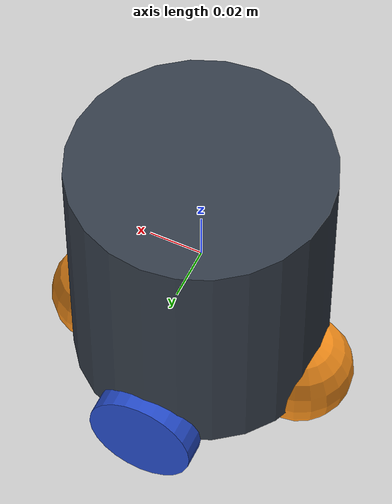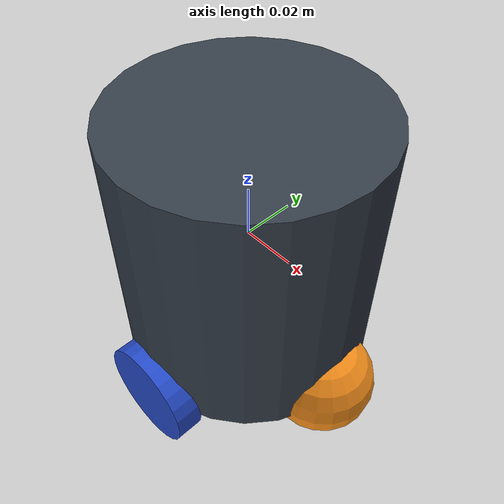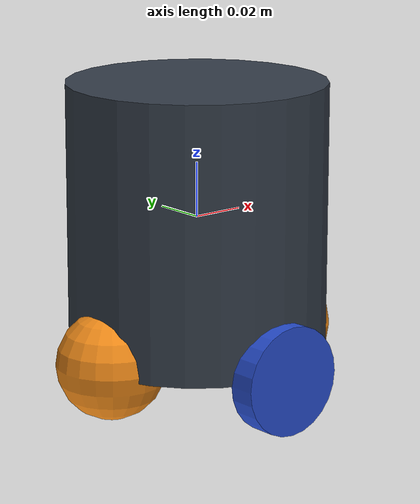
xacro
<?xml version="1.0" ?>

<robot name="m2wr" xmlns:xacro="https://www.ros.org/wiki/xacro" >

  <material name="black">
    <color rgba="0.0 0.0 0.0 1.0"/>
  </material>
  <material name="blue">
    <color rgba="0.203125 0.23828125 0.28515625 1.0"/>
  </material>
  <material name="green">
    <color rgba="0.0 0.8 0.0 1.0"/>
  </material>
  <material name="grey">
    <color rgba="0.2 0.2 0.2 1.0"/>
  </material>
  <material name="orange">
    <color rgba="1.0 0.423529411765 0.0392156862745 1.0"/>
  </material>
  <material name="brown">
    <color rgba="0.870588235294 0.811764705882 0.764705882353 1.0"/>
  </material>
  <material name="red">
    <color rgba="0.80078125 0.12890625 0.1328125 1.0"/>
  </material>
  <material name="white">
    <color rgba="1.0 1.0 1.0 1.0"/>
  </material>

  <gazebo reference="link_chassis">
    <material>Gazebo/Orange</material>
  </gazebo>
  <gazebo reference="link_left_wheel">
    <material>Gazebo/Blue</material>
  </gazebo>
  <gazebo reference="link_right_wheel">
    <material>Gazebo/Blue</material>
  </gazebo>

  <link name="link_chassis">
    <!-- pose and inertial -->
    <pose>0 0 0.01 0 0 0</pose>

    <inertial>
      <mass value="5"/>
      <origin rpy="0 0 0" xyz="0 0 0.1"/>
      <inertia ixx="0.0395416666667" ixy="0" ixz="0" iyy="0.106208333333" iyz="0" izz="0.106208333333"/>
    </inertial>

    <collision name="collision_chassis">
      <geometry>
	<cylinder length="0.1" radius="0.0475"/>
      </geometry>
    </collision>

    <visual>
      <origin rpy="0 0 0" xyz="0 0 0"/>
      <geometry>
	<cylinder length="0.1" radius="0.0475"/>
      </geometry>
      <material name="blue"/>
    </visual>

    <!-- caster front -->
    <collision name="caster_front_collision">
      <origin rpy=" 0 0 0" xyz="0.04 0 -0.048"/>
      <geometry>
        <sphere radius="0.02"/>
      </geometry>
      <surface>
        <friction>
          <ode>
            <mu>0</mu>
            <mu2>0</mu2>
            <slip1>1.0</slip1>
            <slip2>1.0</slip2>
          </ode>
        </friction>
      </surface>
    </collision>
    <visual name="caster_front_visual">
      <origin rpy=" 0 0 0" xyz="0.04 0 -0.048"/>
      <geometry>
        <sphere radius="0.02"/>
      </geometry>
    </visual>

	<!-- caster back -->
    <collision name="caster_back_collision">
      <origin rpy=" 0 0 0" xyz="-0.04 0 -0.048"/>
      <geometry>
        <sphere radius="0.02"/>
      </geometry>
      <surface>
        <friction>
          <ode>
            <mu>0</mu>
            <mu2>0</mu2>
            <slip1>1.0</slip1>
            <slip2>1.0</slip2>
          </ode>
        </friction>
      </surface>
    </collision>
    <visual name="caster_back_visual">
      <origin rpy=" 0 0 0" xyz="-0.04 0 -0.048"/>
      <geometry>
        <sphere radius="0.02"/>
      </geometry>
    </visual>
    </link>

  <!-- Create wheel right -->

  <link name="link_right_wheel">
    <inertial>
      <mass value="0.1"/>
      <origin rpy="0 1.5707 1.5707" xyz="0 0 0"/>
      <inertia ixx="0.00052666666" ixy="0" ixz="0" iyy="0.00052666666" iyz="0" izz="0.001"/>
    </inertial>

    <collision name="link_right_wheel_collision">
      <origin rpy="0 1.5707 1.5707" xyz="0 0 0" />
      <geometry>
        <cylinder length="0.01" radius="0.02"/>
      </geometry>
    </collision>

    <visual name="link_right_wheel_visual">
      <origin rpy="0 1.5707 1.5707" xyz="0 0 0"/>
      <geometry>
        <cylinder length="0.01" radius="0.02"/>
      </geometry>
    </visual>

  </link>

  <!--   Joint for right wheel  -->
  <joint name="joint_right_wheel" type="continuous">
    <origin rpy="0 0 0" xyz="0 0.0475 -0.05"/>
    <child link="link_right_wheel" />
    <parent link="link_chassis"/>
    <axis rpy="0 0 0" xyz="0 1 0"/>
    <limit effort="10000" velocity="1000"/>
    <joint_properties damping="1.0" friction="1.0" />
  </joint>

  <!-- Left Wheel link -->

  <link name="link_left_wheel">
    <inertial>
      <mass value="0.1"/>
      <origin rpy="0 1.5707 1.5707" xyz="0 0 0"/>
      <inertia ixx="0.00052666666" ixy="0" ixz="0" iyy="0.00052666666" iyz="0" izz="0.001"/>
    </inertial>

    <collision name="link_left_wheel_collision">
      <origin rpy="0 1.5707 1.5707" xyz="0 0 0" />
      <geometry>
        <cylinder length="0.01" radius="0.02"/>
      </geometry>
    </collision>

    <visual name="link_left_wheel_visual">
      <origin rpy="0 1.5707 1.5707" xyz="0 0 0"/>
      <geometry>
        <cylinder length="0.01" radius="0.02"/>
      </geometry>
    </visual>

  </link>

  <!--   Joint for right wheel  -->
  <joint name="joint_left_wheel" type="continuous">
    <origin rpy="0 0 0" xyz="0 -0.0475 -0.05"/>
    <child link="link_left_wheel" />
    <parent link="link_chassis"/>
    <axis rpy="0 0 0" xyz="0 1 0"/>
    <limit effort="10000" velocity="1000"/>
    <joint_properties damping="1.0" friction="1.0" />
  </joint>

  <gazebo>
    <plugin filename="libgazebo_ros_diff_drive.so" name="differential_drive_controller">
      <legacyMode>true</legacyMode>
      <alwaysOn>true</alwaysOn>
      <updateRate>20</updateRate>
      <leftJoint>joint_left_wheel</leftJoint>
      <rightJoint>joint_right_wheel</rightJoint>
      <wheelSeparation>0.4</wheelSeparation>
      <wheelDiameter>0.2</wheelDiameter>
      <torque>0.1</torque>
      <commandTopic>cmd_vel</commandTopic>
      <robotBaseFrame>link_chassis</robotBaseFrame>
    </plugin>
  </gazebo>

</robot>
